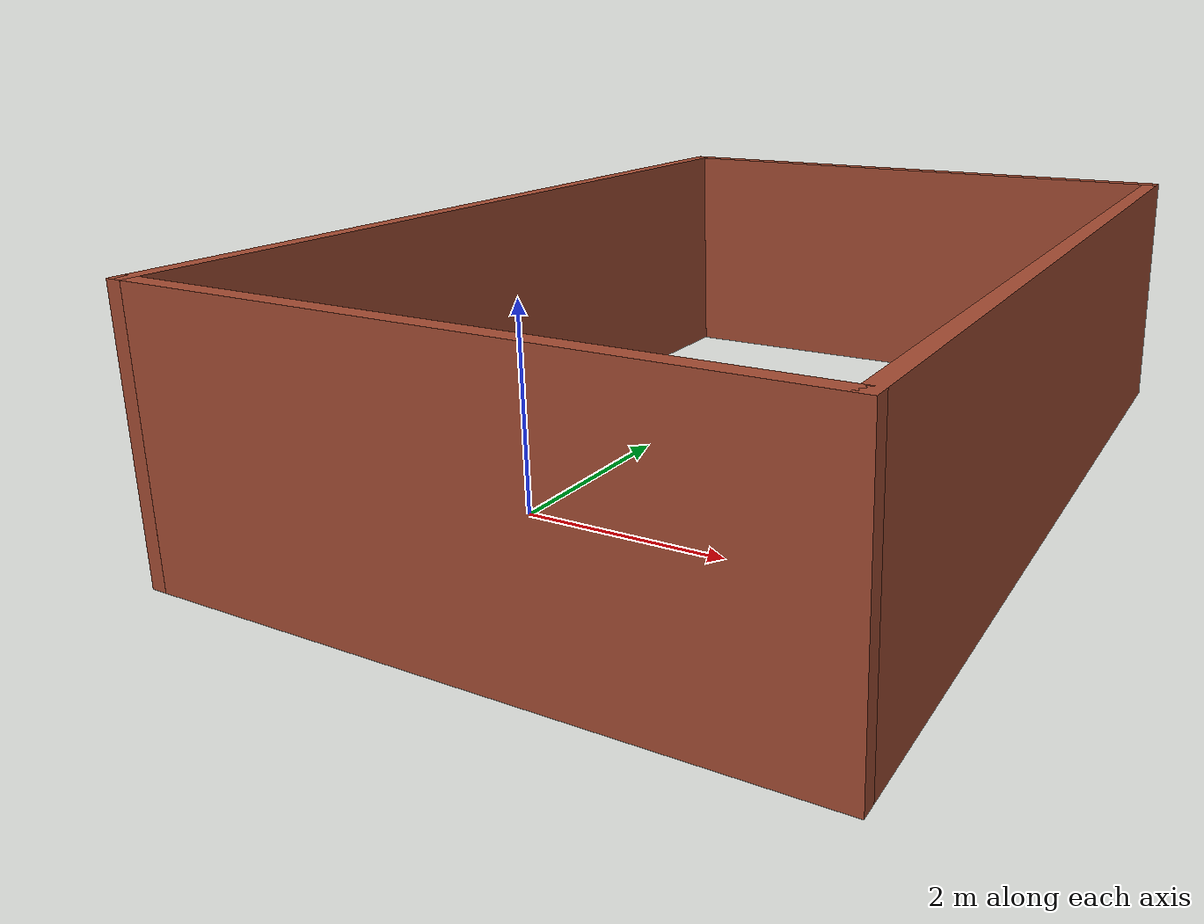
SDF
<?xml version='1.0'?>
<sdf version='1.7'>
  <model name='sparke-test-building'>
    <pose>1.26625 1.84499 0 0 -0 0</pose>
    <link name='Wall_6'>
      <collision name='Wall_6_Collision'>
        <geometry>
          <box>
            <size>8.75 0.15 2.5</size>
          </box>
        </geometry>
        <pose>0 0 1.25 0 -0 0</pose>
      </collision>
      <visual name='Wall_6_Visual'>
        <pose>0 0 1.25 0 -0 0</pose>
        <geometry>
          <box>
            <size>8.75 0.15 2.5</size>
          </box>
        </geometry>
        <material>
          <script>
            <uri>file://media/materials/scripts/gazebo.material</uri>
            <name>Gazebo/Bricks</name>
          </script>
          <ambient>0.447059 0.623529 0.811765 1</ambient>
        </material>
        <meta>
          <layer>0</layer>
        </meta>
      </visual>
      <pose>-2.925 0 0 0 -0 1.5708</pose>
    </link>
    <link name='Wall_7'>
      <collision name='Wall_7_Collision'>
        <geometry>
          <box>
            <size>6 0.15 2.5</size>
          </box>
        </geometry>
        <pose>0 0 1.25 0 -0 0</pose>
      </collision>
      <visual name='Wall_7_Visual'>
        <pose>0 0 1.25 0 -0 0</pose>
        <geometry>
          <box>
            <size>6 0.15 2.5</size>
          </box>
        </geometry>
        <material>
          <script>
            <uri>file://media/materials/scripts/gazebo.material</uri>
            <name>Gazebo/Bricks</name>
          </script>
          <ambient>0.447059 0.623529 0.811765 1</ambient>
        </material>
        <meta>
          <layer>0</layer>
        </meta>
      </visual>
      <pose>0 4.3 0 0 -0 0</pose>
    </link>
    <link name='Wall_8'>
      <collision name='Wall_8_Collision'>
        <geometry>
          <box>
            <size>8.75 0.15 2.5</size>
          </box>
        </geometry>
        <pose>0 0 1.25 0 -0 0</pose>
      </collision>
      <visual name='Wall_8_Visual'>
        <pose>0 0 1.25 0 -0 0</pose>
        <geometry>
          <box>
            <size>8.75 0.15 2.5</size>
          </box>
        </geometry>
        <material>
          <script>
            <uri>file://media/materials/scripts/gazebo.material</uri>
            <name>Gazebo/Bricks</name>
          </script>
          <ambient>0.447059 0.623529 0.811765 1</ambient>
        </material>
        <meta>
          <layer>0</layer>
        </meta>
      </visual>
      <pose>2.925 0 0 0 -0 -1.5708</pose>
    </link>
    <link name='Wall_9'>
      <collision name='Wall_9_Collision'>
        <geometry>
          <box>
            <size>6 0.15 2.5</size>
          </box>
        </geometry>
        <pose>0 0 1.25 0 -0 0</pose>
      </collision>
      <visual name='Wall_9_Visual'>
        <pose>0 0 1.25 0 -0 0</pose>
        <geometry>
          <box>
            <size>6 0.15 2.5</size>
          </box>
        </geometry>
        <material>
          <script>
            <uri>file://media/materials/scripts/gazebo.material</uri>
            <name>Gazebo/Bricks</name>
          </script>
          <ambient>0.447059 0.623529 0.811765 1</ambient>
        </material>
        <meta>
          <layer>0</layer>
        </meta>
      </visual>
      <pose>0 -4.3 0 0 -0 3.14159</pose>
    </link>
    <static>1</static>
  </model>
</sdf>
